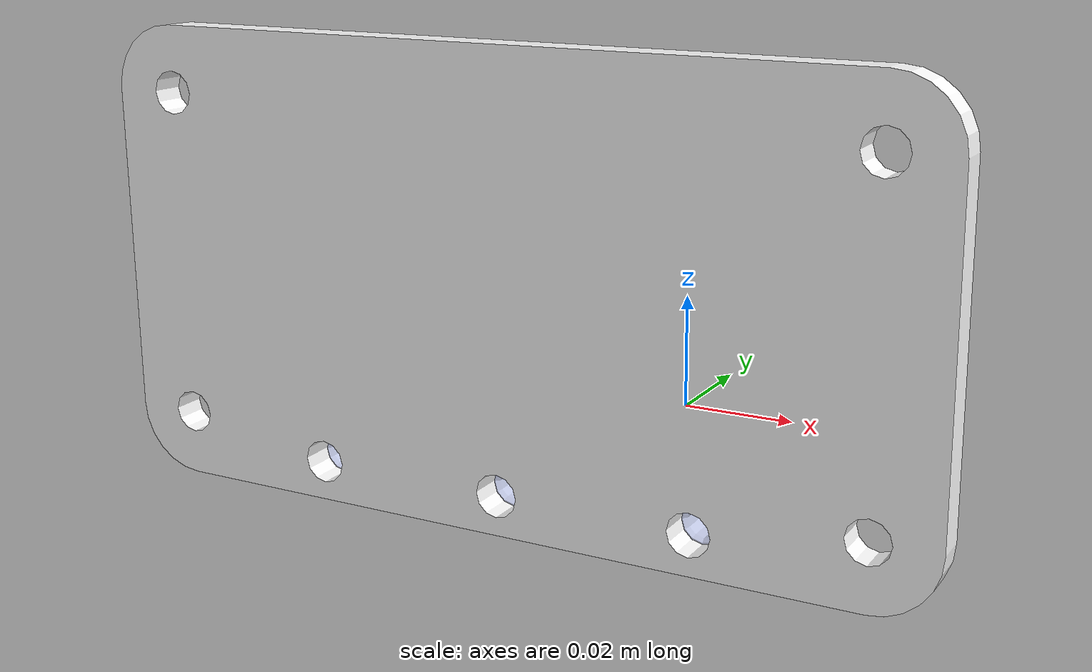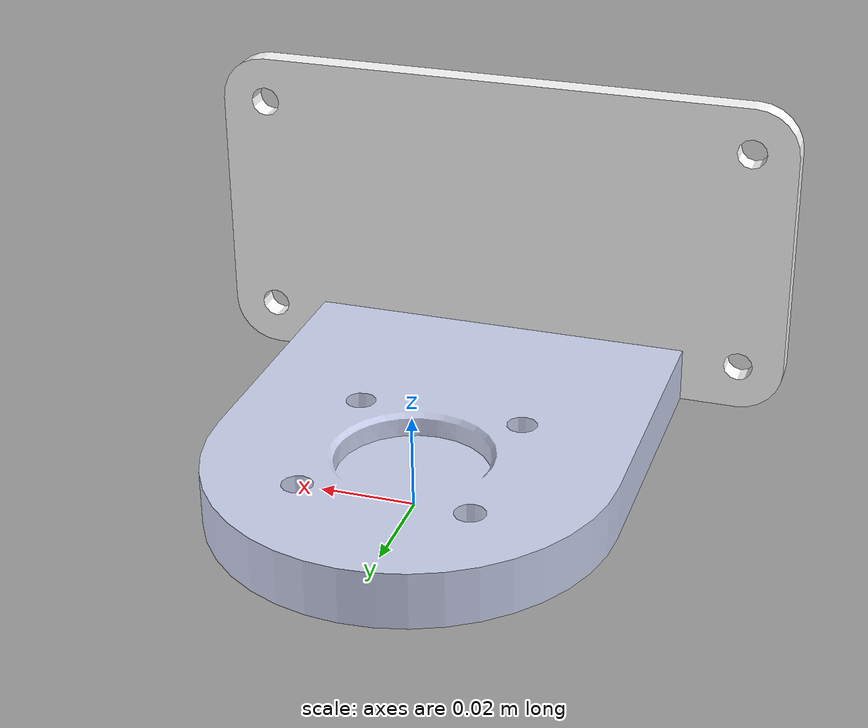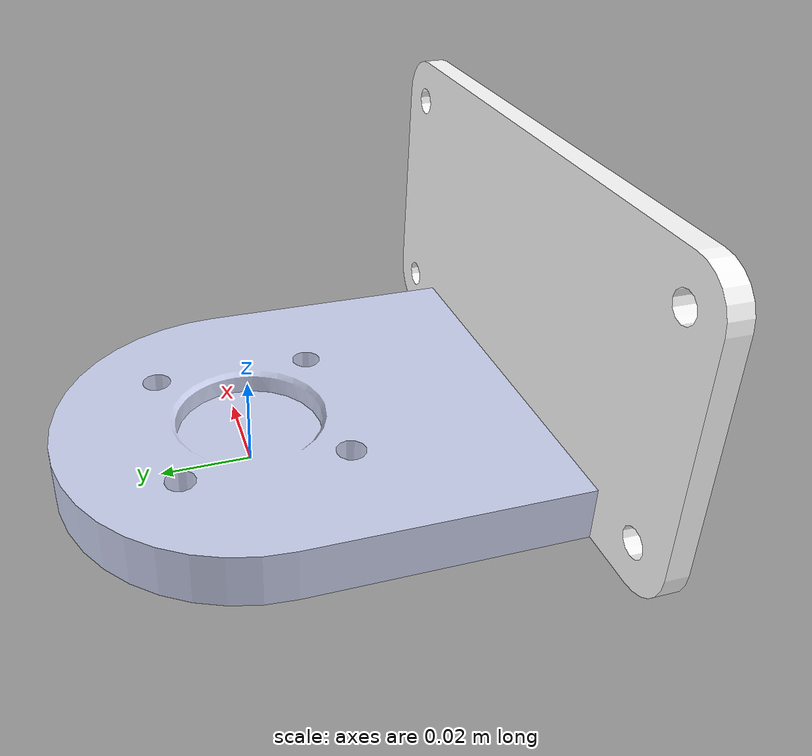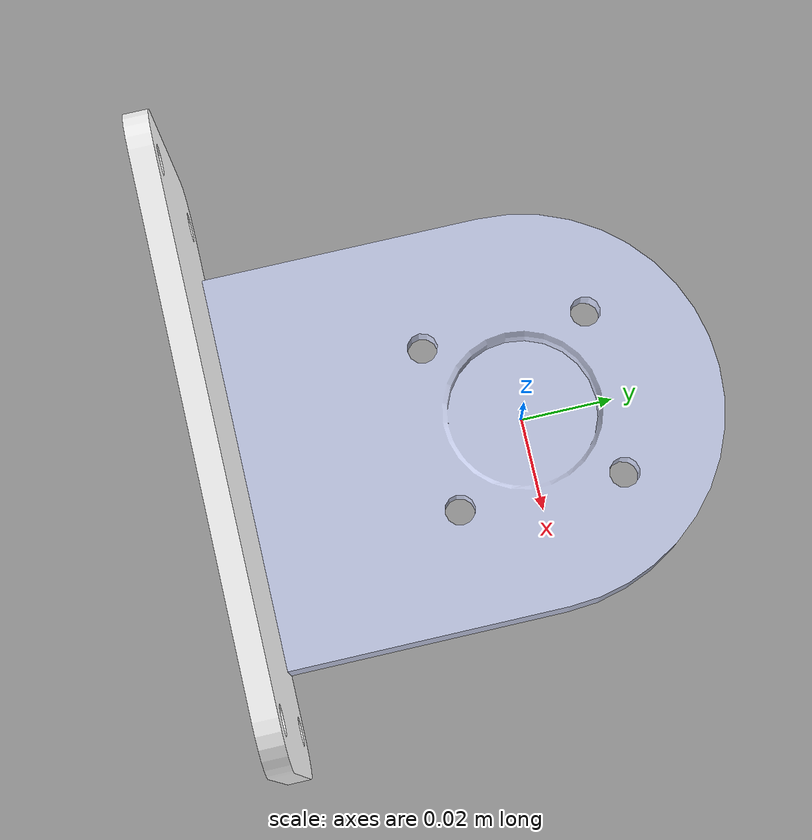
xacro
<?xml version="1.0"?>
<robot name="gw_scanner_mount" xmlns:xacro="http://ros.org/wiki/xacro">
    <xacro:include filename="$(find gw_scanner_mount_description)/urdf/gw_scanner_mount.urdf.xacro"/>

    <link name="map"/>
    <xacro:gw_scanner_mount parent = "map">
        <origin xyz="0 0 0" rpy="0 0 0"/>
    </xacro:gw_scanner_mount>
</robot>

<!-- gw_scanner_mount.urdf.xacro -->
<robot xmlns:xacro="http://ros.org/wiki/xacro">
    <xacro:macro name="gw_scanner_mount" params="parent *origin">
        <!-- 连接 camera_orin 的 parent frame  -->
        <joint name="gw_scanner_mount_joint" type="fixed">
            <parent link="${parent}"/>
            <child link="gw_scanner_mount_base_link"/>
            <xacro:insert_block name="origin"/>
        </joint>
        <link
          name="gw_scanner_mount_base_link">
          <inertial>
            <origin
              xyz="0 -0.015735 0.0056215"
              rpy="0 0 0" />
            <mass
              value="0.074594" />
            <inertia
              ixx="6.3454E-05"
              ixy="3.2515E-21"
              ixz="-5.5646E-22"
              iyy="4.7313E-05"
              iyz="4.4432E-07"
              izz="0.00010901" />
          </inertial>
          <visual>
            <origin
              xyz="0 0 0"
              rpy="0 0 0" />
            <geometry>
              <mesh
                filename="package://gw_scanner_mount_description/meshes/gw_scanner_mount_base_link.STL" />
            </geometry>
            <material
              name="">
              <color
                rgba="0.79216 0.81961 0.93333 1" />
            </material>
          </visual>
          <collision>
            <origin
              xyz="0 0 0"
              rpy="0 0 0" />
            <geometry>
              <mesh
                filename="package://gw_scanner_mount_description/meshes/gw_scanner_mount_base_link.STL" />
            </geometry>
          </collision>
        </link>
        <link
          name="gw_scanner_support_link">
          <inertial>
            <origin
              xyz="1.7347E-17 0.0025 0.00032874"
              rpy="0 0 0" />
            <mass
              value="0.043909" />
            <inertia
              ixx="1.7367E-05"
              ixy="-3.8689E-22"
              ixz="-1.2948E-21"
              iyy="7.7353E-05"
              iyz="-3.1669E-24"
              izz="6.0169E-05" />
          </inertial>
          <visual>
            <origin
              xyz="0 0 0"
              rpy="0 0 0" />
            <geometry>
              <mesh
                filename="package://gw_scanner_mount_description/meshes/gw_scanner_support_link.STL" />
            </geometry>
            <material
              name="">
              <color
                rgba="1 1 1 1" />
            </material>
          </visual>
          <collision>
            <origin
              xyz="0 0 0"
              rpy="0 0 0" />
            <geometry>
              <mesh
                filename="package://gw_scanner_mount_description/meshes/gw_scanner_support_link.STL" />
            </geometry>
          </collision>
        </link>
        <joint
          name="gw_scanner_support_joint"
          type="fixed">
          <origin
            xyz="0 -0.065 0.035"
            rpy="0 0 0" />
          <parent
            link="gw_scanner_mount_base_link" />
          <child
            link="gw_scanner_support_link" />
          <axis
            xyz="0 0 0" />
        </joint>
        <link name="gripper_support_link" />
        <joint
            name="gripper_support_joint"
            type="fixed">
        <origin
                xyz="0 0 0.012"
                rpy="0 0 0" />
        <parent
                link="gw_scanner_mount_base_link" />
        <child
                link="gripper_support_link" />
        <axis
                xyz="0 0 1" />
        </joint>
    </xacro:macro>
</robot>
